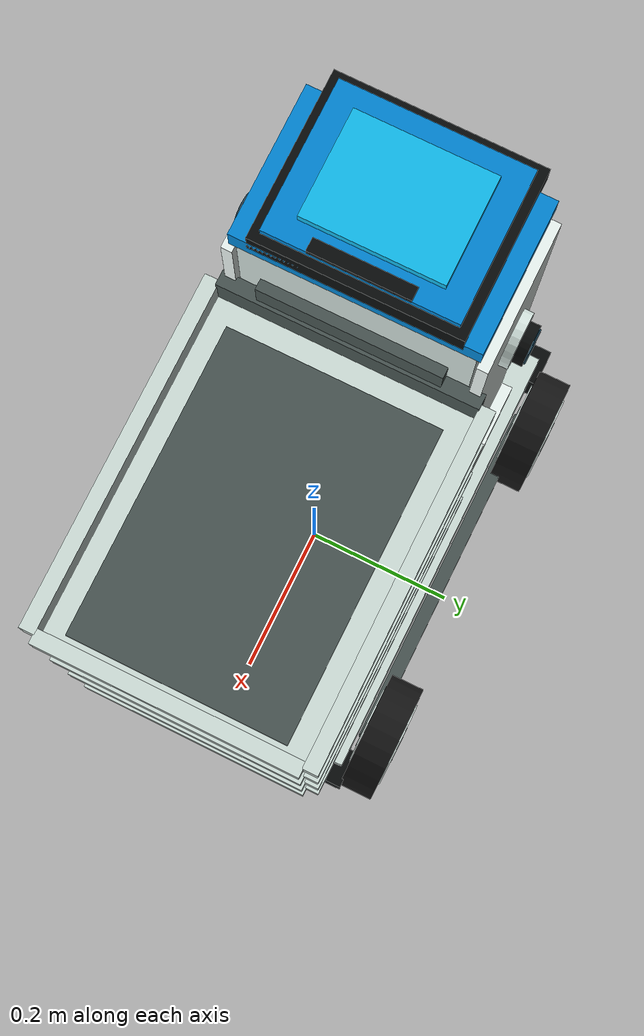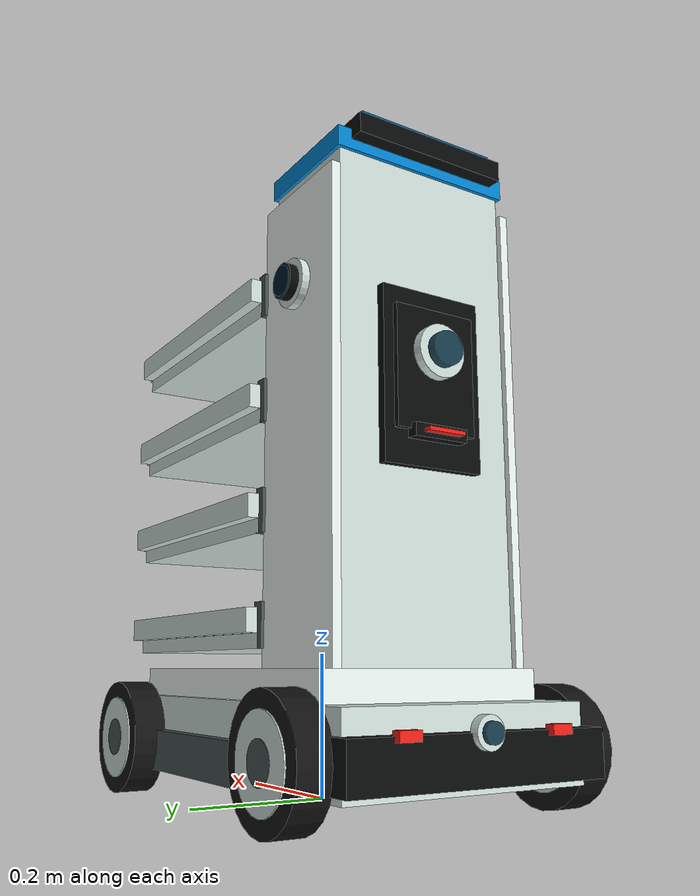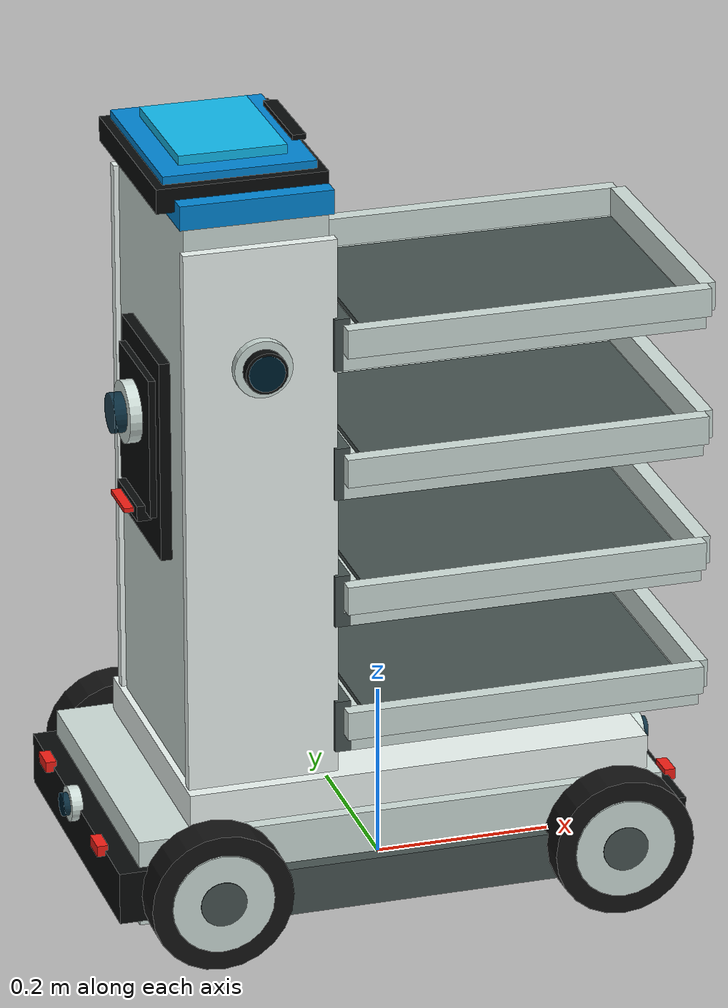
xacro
<?xml version="1.0"?>
<robot name="service_robot_cart" xmlns:xacro="http://www.ros.org/wiki/xacro">

  <!-- Include the geometric model -->
  <xacro:include filename="$(find service_robot_cart_description)/urdf/service_robot_cart_geometric.urdf.xacro"/>

  <!-- ros2_control hardware interface (inline, not included) -->
  <ros2_control name="mock_components" type="system">
    <hardware>
      <plugin>mock_components/System</plugin>
      <param name="front_left_wheel_joint">position</param>
      <param name="front_right_wheel_joint">position</param>
      <param name="rear_left_wheel_joint">position</param>
      <param name="rear_right_wheel_joint">position</param>
    </hardware>

    <joint name="front_left_wheel_joint">
      <command_interface name="position"/>
      <command_interface name="velocity"/>
      <state_interface name="position"/>
      <state_interface name="velocity"/>
    </joint>

    <joint name="front_right_wheel_joint">
      <command_interface name="position"/>
      <command_interface name="velocity"/>
      <state_interface name="position"/>
      <state_interface name="velocity"/>
    </joint>

    <joint name="rear_left_wheel_joint">
      <command_interface name="position"/>
      <command_interface name="velocity"/>
      <state_interface name="position"/>
      <state_interface name="velocity"/>
    </joint>

    <joint name="rear_right_wheel_joint">
      <command_interface name="position"/>
      <command_interface name="velocity"/>
      <state_interface name="position"/>
      <state_interface name="velocity"/>
    </joint>
  </ros2_control>

</robot>

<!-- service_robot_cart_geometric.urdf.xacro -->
<robot name="service_robot_cart_geometric" xmlns:xacro="http://www.ros.org/wiki/xacro">

  <!-- Simplified geometric URDF. Units: meters. -->

  <!-- Coordinate convention: +X forward/toward shelf side, +Y left, +Z up. -->

  <material name="silver">
    <color rgba="0.804 0.863 0.843 1"/>
  </material>
  <material name="dark_silver">
    <color rgba="0.275 0.322 0.314 1"/>
  </material>
  <material name="black">
    <color rgba="0.031 0.039 0.039 1"/>
  </material>
  <material name="rubber">
    <color rgba="0.071 0.071 0.071 1"/>
  </material>
  <material name="blue">
    <color rgba="0 0.518 0.824 1"/>
  </material>
  <material name="screen">
    <color rgba="0.063 0.725 0.922 0.902"/>
  </material>
  <material name="glass">
    <color rgba="0.02 0.176 0.255 0.863"/>
  </material>
  <material name="red">
    <color rgba="0.941 0.118 0.086 1"/>
  </material>
  <material name="white">
    <color rgba="0.922 0.961 0.949 1"/>
  </material>

  <link name="base_link">
    <inertial>
      <origin xyz="-0.02 0.0 0.1" rpy="0 0 0"/>
      <mass value="3.0"/>
      <inertia ixx="0.03625" ixy="0.0" ixz="0.0" iyy="0.095625" iyz="0.0" izz="0.120625"/>
    </inertial>
    <visual name="lower_chassis">
      <origin xyz="-0.025 0.0 0.09" rpy="0 0 0"/>
      <geometry>
        <box size="0.6 0.35 0.1"/>
      </geometry>
      <material name="silver"/>
    </visual>
    <visual name="upper_deck">
      <origin xyz="0.0 0.0 0.16" rpy="0 0 0"/>
      <geometry>
        <box size="0.525 0.32 0.04"/>
      </geometry>
      <material name="white"/>
    </visual>
    <visual name="front_black_bumper">
      <origin xyz="0.275 0.0 0.08" rpy="0 0 0"/>
      <geometry>
        <box size="0.05 0.37 0.06"/>
      </geometry>
      <material name="black"/>
    </visual>
    <visual name="rear_black_bumper">
      <origin xyz="-0.325 0.0 0.08" rpy="0 0 0"/>
      <geometry>
        <box size="0.05 0.37 0.06"/>
      </geometry>
      <material name="black"/>
    </visual>
    <visual name="left_side_skirt">
      <origin xyz="-0.015 0.186 0.065" rpy="0 0 0"/>
      <geometry>
        <box size="0.48 0.0175 0.055"/>
      </geometry>
      <material name="dark_silver"/>
    </visual>
    <visual name="right_side_skirt">
      <origin xyz="-0.015 -0.186 0.065" rpy="0 0 0"/>
      <geometry>
        <box size="0.48 0.0175 0.055"/>
      </geometry>
      <material name="dark_silver"/>
    </visual>
    <visual name="front_red_indicator_left">
      <origin xyz="0.3025 0.11 0.11" rpy="0 0 0"/>
      <geometry>
        <box size="0.0125 0.03 0.0125"/>
      </geometry>
      <material name="red"/>
    </visual>
    <visual name="front_red_indicator_right">
      <origin xyz="0.3025 -0.11 0.11" rpy="0 0 0"/>
      <geometry>
        <box size="0.0125 0.03 0.0125"/>
      </geometry>
      <material name="red"/>
    </visual>
    <visual name="rear_red_indicator_left">
      <origin xyz="-0.3525 0.11 0.11" rpy="0 0 0"/>
      <geometry>
        <box size="0.0125 0.03 0.0125"/>
      </geometry>
      <material name="red"/>
    </visual>
    <visual name="rear_red_indicator_right">
      <origin xyz="-0.3525 -0.11 0.11" rpy="0 0 0"/>
      <geometry>
        <box size="0.0125 0.03 0.0125"/>
      </geometry>
      <material name="red"/>
    </visual>
    <collision name="lower_chassis_collision">
      <origin xyz="-0.025 0.0 0.09" rpy="0 0 0"/>
      <geometry>
        <box size="0.6 0.35 0.1"/>
      </geometry>
    </collision>
    <collision name="upper_deck_collision">
      <origin xyz="0.0 0.0 0.16" rpy="0 0 0"/>
      <geometry>
        <box size="0.525 0.32 0.04"/>
      </geometry>
    </collision>
  </link>

  <link name="body_link">
    <inertial>
      <origin xyz="0.0 0.0 0.0" rpy="0 0 0"/>
      <mass value="2.5"/>
      <inertia ixx="0.11041666" ixy="0.0" ixz="0.0" iyy="0.10166666" iyz="0.0" izz="0.01941666"/>
    </inertial>
    <visual name="straight_main_body">
      <origin xyz="0.0 0.0 0.0" rpy="0 0 0"/>
      <geometry>
        <box size="0.16 0.26 0.68"/>
      </geometry>
      <material name="silver"/>
    </visual>
    <visual name="front_dark_service_panel">
      <origin xyz="0.0875 0.0 -0.01" rpy="0 0 0"/>
      <geometry>
        <box size="0.0125 0.21 0.54"/>
      </geometry>
      <material name="dark_silver"/>
    </visual>
    <visual name="rear_camera_recess_panel">
      <origin xyz="-0.0875 0.0 0.05" rpy="0 0 0"/>
      <geometry>
        <box size="0.0125 0.15 0.23"/>
      </geometry>
      <material name="black"/>
    </visual>
    <visual name="left_vertical_trim">
      <origin xyz="0.0 0.139 0.0" rpy="0 0 0"/>
      <geometry>
        <box size="0.17 0.0125 0.63"/>
      </geometry>
      <material name="white"/>
    </visual>
    <visual name="right_vertical_trim">
      <origin xyz="0.0 -0.139 0.0" rpy="0 0 0"/>
      <geometry>
        <box size="0.17 0.0125 0.63"/>
      </geometry>
      <material name="white"/>
    </visual>
    <visual name="top_blue_cap">
      <origin xyz="0.0 0.0 0.3535" rpy="0 0 0"/>
      <geometry>
        <box size="0.17 0.27 0.0275"/>
      </geometry>
      <material name="blue"/>
    </visual>
    <collision name="body_collision">
      <origin xyz="0.0 0.0 0.0" rpy="0 0 0"/>
      <geometry>
        <box size="0.16 0.26 0.68"/>
      </geometry>
    </collision>
  </link>

  <link name="tray_1_link">
    <inertial>
      <origin xyz="0.0 0.0 0.0" rpy="0 0 0"/>
      <mass value="0.25"/>
      <inertia ixx="0.00190834" ixy="0.0" ixz="0.0" iyy="0.00353541" iyz="0.0" izz="0.00537709"/>
    </inertial>
    <visual name="tray_1_deck">
      <origin xyz="0.0 0.0 0.0" rpy="0 0 0"/>
      <geometry>
        <box size="0.41 0.3 0.02"/>
      </geometry>
      <material name="silver"/>
    </visual>
    <visual name="tray_1_dark_inset">
      <origin xyz="0.01 0.0 0.0155" rpy="0 0 0"/>
      <geometry>
        <box size="0.36 0.25 0.006"/>
      </geometry>
      <material name="dark_silver"/>
    </visual>
    <visual name="tray_1_left_rail">
      <origin xyz="0.0 0.1575 0.0265" rpy="0 0 0"/>
      <geometry>
        <box size="0.41 0.0175 0.0325"/>
      </geometry>
      <material name="silver"/>
    </visual>
    <visual name="tray_1_right_rail">
      <origin xyz="0.0 -0.1575 0.0265" rpy="0 0 0"/>
      <geometry>
        <box size="0.41 0.0175 0.0325"/>
      </geometry>
      <material name="silver"/>
    </visual>
    <visual name="tray_1_front_rail">
      <origin xyz="0.206 0.0 0.0265" rpy="0 0 0"/>
      <geometry>
        <box size="0.0175 0.3 0.0325"/>
      </geometry>
      <material name="silver"/>
    </visual>
    <visual name="tray_1_rear_bracket">
      <origin xyz="-0.206 0.0 0.02" rpy="0 0 0"/>
      <geometry>
        <box size="0.0175 0.3 0.06"/>
      </geometry>
      <material name="dark_silver"/>
    </visual>
    <collision name="tray_1_collision">
      <origin xyz="0.0 0.0 0.0175" rpy="0 0 0"/>
      <geometry>
        <box size="0.42 0.32 0.0425"/>
      </geometry>
    </collision>
  </link>

  <link name="tray_1_surface_frame">
  </link>

  <link name="tray_2_link">
    <inertial>
      <origin xyz="0.0 0.0 0.0" rpy="0 0 0"/>
      <mass value="0.25"/>
      <inertia ixx="0.00190834" ixy="0.0" ixz="0.0" iyy="0.00353541" iyz="0.0" izz="0.00537709"/>
    </inertial>
    <visual name="tray_2_deck">
      <origin xyz="0.0 0.0 0.0" rpy="0 0 0"/>
      <geometry>
        <box size="0.41 0.3 0.02"/>
      </geometry>
      <material name="silver"/>
    </visual>
    <visual name="tray_2_dark_inset">
      <origin xyz="0.01 0.0 0.0155" rpy="0 0 0"/>
      <geometry>
        <box size="0.36 0.25 0.006"/>
      </geometry>
      <material name="dark_silver"/>
    </visual>
    <visual name="tray_2_left_rail">
      <origin xyz="0.0 0.1575 0.0265" rpy="0 0 0"/>
      <geometry>
        <box size="0.41 0.0175 0.0325"/>
      </geometry>
      <material name="silver"/>
    </visual>
    <visual name="tray_2_right_rail">
      <origin xyz="0.0 -0.1575 0.0265" rpy="0 0 0"/>
      <geometry>
        <box size="0.41 0.0175 0.0325"/>
      </geometry>
      <material name="silver"/>
    </visual>
    <visual name="tray_2_front_rail">
      <origin xyz="0.206 0.0 0.0265" rpy="0 0 0"/>
      <geometry>
        <box size="0.0175 0.3 0.0325"/>
      </geometry>
      <material name="silver"/>
    </visual>
    <visual name="tray_2_rear_bracket">
      <origin xyz="-0.206 0.0 0.02" rpy="0 0 0"/>
      <geometry>
        <box size="0.0175 0.3 0.06"/>
      </geometry>
      <material name="dark_silver"/>
    </visual>
    <collision name="tray_2_collision">
      <origin xyz="0.0 0.0 0.0175" rpy="0 0 0"/>
      <geometry>
        <box size="0.42 0.32 0.0425"/>
      </geometry>
    </collision>
  </link>

  <link name="tray_2_surface_frame">
  </link>

  <link name="tray_3_link">
    <inertial>
      <origin xyz="0.0 0.0 0.0" rpy="0 0 0"/>
      <mass value="0.25"/>
      <inertia ixx="0.00190834" ixy="0.0" ixz="0.0" iyy="0.00353541" iyz="0.0" izz="0.00537709"/>
    </inertial>
    <visual name="tray_3_deck">
      <origin xyz="0.0 0.0 0.0" rpy="0 0 0"/>
      <geometry>
        <box size="0.41 0.3 0.02"/>
      </geometry>
      <material name="silver"/>
    </visual>
    <visual name="tray_3_dark_inset">
      <origin xyz="0.01 0.0 0.0155" rpy="0 0 0"/>
      <geometry>
        <box size="0.36 0.25 0.006"/>
      </geometry>
      <material name="dark_silver"/>
    </visual>
    <visual name="tray_3_left_rail">
      <origin xyz="0.0 0.1575 0.0265" rpy="0 0 0"/>
      <geometry>
        <box size="0.41 0.0175 0.0325"/>
      </geometry>
      <material name="silver"/>
    </visual>
    <visual name="tray_3_right_rail">
      <origin xyz="0.0 -0.1575 0.0265" rpy="0 0 0"/>
      <geometry>
        <box size="0.41 0.0175 0.0325"/>
      </geometry>
      <material name="silver"/>
    </visual>
    <visual name="tray_3_front_rail">
      <origin xyz="0.206 0.0 0.0265" rpy="0 0 0"/>
      <geometry>
        <box size="0.0175 0.3 0.0325"/>
      </geometry>
      <material name="silver"/>
    </visual>
    <visual name="tray_3_rear_bracket">
      <origin xyz="-0.206 0.0 0.02" rpy="0 0 0"/>
      <geometry>
        <box size="0.0175 0.3 0.06"/>
      </geometry>
      <material name="dark_silver"/>
    </visual>
    <collision name="tray_3_collision">
      <origin xyz="0.0 0.0 0.0175" rpy="0 0 0"/>
      <geometry>
        <box size="0.42 0.32 0.0425"/>
      </geometry>
    </collision>
  </link>

  <link name="tray_3_surface_frame">
  </link>

  <link name="tray_4_link">
    <inertial>
      <origin xyz="0.0 0.0 0.0" rpy="0 0 0"/>
      <mass value="0.25"/>
      <inertia ixx="0.00190834" ixy="0.0" ixz="0.0" iyy="0.00353541" iyz="0.0" izz="0.00537709"/>
    </inertial>
    <visual name="tray_4_deck">
      <origin xyz="0.0 0.0 0.0" rpy="0 0 0"/>
      <geometry>
        <box size="0.41 0.3 0.02"/>
      </geometry>
      <material name="silver"/>
    </visual>
    <visual name="tray_4_dark_inset">
      <origin xyz="0.01 0.0 0.0155" rpy="0 0 0"/>
      <geometry>
        <box size="0.36 0.25 0.006"/>
      </geometry>
      <material name="dark_silver"/>
    </visual>
    <visual name="tray_4_left_rail">
      <origin xyz="0.0 0.1575 0.0265" rpy="0 0 0"/>
      <geometry>
        <box size="0.41 0.0175 0.0325"/>
      </geometry>
      <material name="silver"/>
    </visual>
    <visual name="tray_4_right_rail">
      <origin xyz="0.0 -0.1575 0.0265" rpy="0 0 0"/>
      <geometry>
        <box size="0.41 0.0175 0.0325"/>
      </geometry>
      <material name="silver"/>
    </visual>
    <visual name="tray_4_front_rail">
      <origin xyz="0.206 0.0 0.0265" rpy="0 0 0"/>
      <geometry>
        <box size="0.0175 0.3 0.0325"/>
      </geometry>
      <material name="silver"/>
    </visual>
    <visual name="tray_4_rear_bracket">
      <origin xyz="-0.206 0.0 0.02" rpy="0 0 0"/>
      <geometry>
        <box size="0.0175 0.3 0.06"/>
      </geometry>
      <material name="dark_silver"/>
    </visual>
    <collision name="tray_4_collision">
      <origin xyz="0.0 0.0 0.0175" rpy="0 0 0"/>
      <geometry>
        <box size="0.42 0.32 0.0425"/>
      </geometry>
    </collision>
  </link>

  <link name="tray_4_surface_frame">
  </link>

  <link name="front_left_wheel_link">
    <inertial>
      <origin xyz="0.0 0.0 0.0" rpy="0 0 0"/>
      <mass value="0.25"/>
      <inertia ixx="0.00044219" ixy="0.0" ixz="0.0" iyy="0.0008" iyz="0.0" izz="0.00044219"/>
    </inertial>
    <visual name="front_left_wheel_link_rubber_tire">
      <origin xyz="0.0 0.0 0.0" rpy="-1.570796 0 0"/>
      <geometry>
        <cylinder radius="0.08" length="0.045"/>
      </geometry>
      <material name="rubber"/>
    </visual>
    <visual name="front_left_wheel_link_silver_hub">
      <origin xyz="0.0 0.0 0.0" rpy="-1.570796 0 0"/>
      <geometry>
        <cylinder radius="0.0575" length="0.049"/>
      </geometry>
      <material name="silver"/>
    </visual>
    <visual name="front_left_wheel_link_dark_center_cap">
      <origin xyz="0.0 0.0 0.0" rpy="-1.570796 0 0"/>
      <geometry>
        <cylinder radius="0.026" length="0.051"/>
      </geometry>
      <material name="dark_silver"/>
    </visual>
    <collision name="wheel_collision">
      <origin xyz="0.0 0.0 0.0" rpy="-1.570796 0 0"/>
      <geometry>
        <cylinder radius="0.08" length="0.045"/>
      </geometry>
    </collision>
  </link>

  <link name="front_right_wheel_link">
    <inertial>
      <origin xyz="0.0 0.0 0.0" rpy="0 0 0"/>
      <mass value="0.25"/>
      <inertia ixx="0.00044219" ixy="0.0" ixz="0.0" iyy="0.0008" iyz="0.0" izz="0.00044219"/>
    </inertial>
    <visual name="front_right_wheel_link_rubber_tire">
      <origin xyz="0.0 0.0 0.0" rpy="-1.570796 0 0"/>
      <geometry>
        <cylinder radius="0.08" length="0.045"/>
      </geometry>
      <material name="rubber"/>
    </visual>
    <visual name="front_right_wheel_link_silver_hub">
      <origin xyz="0.0 0.0 0.0" rpy="-1.570796 0 0"/>
      <geometry>
        <cylinder radius="0.0575" length="0.049"/>
      </geometry>
      <material name="silver"/>
    </visual>
    <visual name="front_right_wheel_link_dark_center_cap">
      <origin xyz="0.0 0.0 0.0" rpy="-1.570796 0 0"/>
      <geometry>
        <cylinder radius="0.026" length="0.051"/>
      </geometry>
      <material name="dark_silver"/>
    </visual>
    <collision name="wheel_collision">
      <origin xyz="0.0 0.0 0.0" rpy="-1.570796 0 0"/>
      <geometry>
        <cylinder radius="0.08" length="0.045"/>
      </geometry>
    </collision>
  </link>

  <link name="rear_left_wheel_link">
    <inertial>
      <origin xyz="0.0 0.0 0.0" rpy="0 0 0"/>
      <mass value="0.25"/>
      <inertia ixx="0.00044219" ixy="0.0" ixz="0.0" iyy="0.0008" iyz="0.0" izz="0.00044219"/>
    </inertial>
    <visual name="rear_left_wheel_link_rubber_tire">
      <origin xyz="0.0 0.0 0.0" rpy="-1.570796 0 0"/>
      <geometry>
        <cylinder radius="0.08" length="0.045"/>
      </geometry>
      <material name="rubber"/>
    </visual>
    <visual name="rear_left_wheel_link_silver_hub">
      <origin xyz="0.0 0.0 0.0" rpy="-1.570796 0 0"/>
      <geometry>
        <cylinder radius="0.0575" length="0.049"/>
      </geometry>
      <material name="silver"/>
    </visual>
    <visual name="rear_left_wheel_link_dark_center_cap">
      <origin xyz="0.0 0.0 0.0" rpy="-1.570796 0 0"/>
      <geometry>
        <cylinder radius="0.026" length="0.051"/>
      </geometry>
      <material name="dark_silver"/>
    </visual>
    <collision name="wheel_collision">
      <origin xyz="0.0 0.0 0.0" rpy="-1.570796 0 0"/>
      <geometry>
        <cylinder radius="0.08" length="0.045"/>
      </geometry>
    </collision>
  </link>

  <link name="rear_right_wheel_link">
    <inertial>
      <origin xyz="0.0 0.0 0.0" rpy="0 0 0"/>
      <mass value="0.25"/>
      <inertia ixx="0.00044219" ixy="0.0" ixz="0.0" iyy="0.0008" iyz="0.0" izz="0.00044219"/>
    </inertial>
    <visual name="rear_right_wheel_link_rubber_tire">
      <origin xyz="0.0 0.0 0.0" rpy="-1.570796 0 0"/>
      <geometry>
        <cylinder radius="0.08" length="0.045"/>
      </geometry>
      <material name="rubber"/>
    </visual>
    <visual name="rear_right_wheel_link_silver_hub">
      <origin xyz="0.0 0.0 0.0" rpy="-1.570796 0 0"/>
      <geometry>
        <cylinder radius="0.0575" length="0.049"/>
      </geometry>
      <material name="silver"/>
    </visual>
    <visual name="rear_right_wheel_link_dark_center_cap">
      <origin xyz="0.0 0.0 0.0" rpy="-1.570796 0 0"/>
      <geometry>
        <cylinder radius="0.026" length="0.051"/>
      </geometry>
      <material name="dark_silver"/>
    </visual>
    <collision name="wheel_collision">
      <origin xyz="0.0 0.0 0.0" rpy="-1.570796 0 0"/>
      <geometry>
        <cylinder radius="0.08" length="0.045"/>
      </geometry>
    </collision>
  </link>

  <link name="rear_camera_link">
    <inertial>
      <origin xyz="0.0 0.0 0.0" rpy="0 0 0"/>
      <mass value="0.0437"/>
      <inertia ixx="0.00017975" ixy="0.0" ixz="0.0" iyy="0.00012259" iyz="0.0" izz="6.609e-05"/>
    </inertial>
    <visual name="rear_camera_black_panel">
      <origin xyz="0.0 0.0 0.0" rpy="0 0 0"/>
      <geometry>
        <box size="0.0175 0.12 0.16"/>
      </geometry>
      <material name="black"/>
    </visual>
    <visual name="rear_camera_silver_ring">
      <origin xyz="0.0125 0.0 0.0225" rpy="0 1.570796 0"/>
      <geometry>
        <cylinder radius="0.035" length="0.02"/>
      </geometry>
      <material name="silver"/>
    </visual>
    <visual name="rear_camera_glass_lens">
      <origin xyz="0.025 0.0 0.0225" rpy="0 1.570796 0"/>
      <geometry>
        <cylinder radius="0.0225" length="0.022"/>
      </geometry>
      <material name="glass"/>
    </visual>
    <visual name="rear_small_scanner_slot">
      <origin xyz="0.01 0.0 -0.0825" rpy="0 0 0"/>
      <geometry>
        <box size="0.016 0.08 0.0175"/>
      </geometry>
      <material name="black"/>
    </visual>
    <visual name="rear_small_red_line">
      <origin xyz="0.0205 0.0 -0.0825" rpy="0 0 0"/>
      <geometry>
        <box size="0.017 0.055 0.005"/>
      </geometry>
      <material name="red"/>
    </visual>
    <collision name="rear_camera_collision">
      <origin xyz="0.0 0.0 0.0" rpy="0 0 0"/>
      <geometry>
        <box size="0.035 0.13 0.18"/>
      </geometry>
    </collision>
  </link>

  <link name="rear_camera_optical_frame">
  </link>

  <link name="left_side_camera_link">
    <inertial>
      <origin xyz="0.0 0.0 0.0" rpy="0 0 0"/>
      <mass value="0.0312"/>
      <inertia ixx="1.65e-05" ixy="0.0" ixz="0.0" iyy="1.022e-05" iyz="0.0" izz="1.022e-05"/>
    </inertial>
    <visual name="left_side_camera_housing">
      <origin xyz="0.0 0.0 0.0" rpy="0 1.570796 0"/>
      <geometry>
        <cylinder radius="0.0325" length="0.0275"/>
      </geometry>
      <material name="silver"/>
    </visual>
    <visual name="left_side_camera_lens">
      <origin xyz="0.013 0.0 0.0" rpy="0 1.570796 0"/>
      <geometry>
        <cylinder radius="0.02" length="0.03"/>
      </geometry>
      <material name="glass"/>
    </visual>
    <visual name="left_side_camera_black_ring">
      <origin xyz="0.01 0.0 0.0" rpy="0 1.570796 0"/>
      <geometry>
        <cylinder radius="0.0235" length="0.032"/>
      </geometry>
      <material name="black"/>
    </visual>
    <collision name="left_side_camera_link_collision">
      <origin xyz="0.0 0.0 0.0" rpy="0 1.570796 0"/>
      <geometry>
        <cylinder radius="0.035" length="0.035"/>
      </geometry>
    </collision>
  </link>

  <link name="left_side_camera_optical_frame">
  </link>

  <link name="right_side_camera_link">
    <inertial>
      <origin xyz="0.0 0.0 0.0" rpy="0 0 0"/>
      <mass value="0.0312"/>
      <inertia ixx="1.65e-05" ixy="0.0" ixz="0.0" iyy="1.022e-05" iyz="0.0" izz="1.022e-05"/>
    </inertial>
    <visual name="right_side_camera_housing">
      <origin xyz="0.0 0.0 0.0" rpy="0 1.570796 0"/>
      <geometry>
        <cylinder radius="0.0325" length="0.0275"/>
      </geometry>
      <material name="silver"/>
    </visual>
    <visual name="right_side_camera_lens">
      <origin xyz="0.013 0.0 0.0" rpy="0 1.570796 0"/>
      <geometry>
        <cylinder radius="0.02" length="0.03"/>
      </geometry>
      <material name="glass"/>
    </visual>
    <visual name="right_side_camera_black_ring">
      <origin xyz="0.01 0.0 0.0" rpy="0 1.570796 0"/>
      <geometry>
        <cylinder radius="0.0235" length="0.032"/>
      </geometry>
      <material name="black"/>
    </visual>
    <collision name="right_side_camera_link_collision">
      <origin xyz="0.0 0.0 0.0" rpy="0 1.570796 0"/>
      <geometry>
        <cylinder radius="0.035" length="0.035"/>
      </geometry>
    </collision>
  </link>

  <link name="right_side_camera_optical_frame">
  </link>

  <link name="top_display_link">
    <inertial>
      <origin xyz="0.0 0.0 0.0" rpy="0 0 0"/>
      <mass value="0.0563"/>
      <inertia ixx="0.0002775" ixy="0.0" ixz="0.0" iyy="0.000195" iyz="0.0" izz="0.0004575"/>
    </inertial>
    <visual name="top_display_black_housing">
      <origin xyz="0.0 0.0 0.0" rpy="0 0 0"/>
      <geometry>
        <box size="0.19 0.23 0.0275"/>
      </geometry>
      <material name="black"/>
    </visual>
    <visual name="top_display_blue_bezel">
      <origin xyz="0.0 0.0 0.019" rpy="0 0 0"/>
      <geometry>
        <box size="0.17 0.21 0.009"/>
      </geometry>
      <material name="blue"/>
    </visual>
    <visual name="top_display_screen">
      <origin xyz="0.0 0.0 0.029" rpy="0 0 0"/>
      <geometry>
        <box size="0.12 0.155 0.0105"/>
      </geometry>
      <material name="screen"/>
    </visual>
    <visual name="top_display_slot">
      <origin xyz="0.08 0.0 0.032" rpy="0 0 0"/>
      <geometry>
        <box size="0.015 0.11 0.006"/>
      </geometry>
      <material name="black"/>
    </visual>
    <collision name="top_display_collision">
      <origin xyz="0.0 0.0 0.0" rpy="0 0 0"/>
      <geometry>
        <box size="0.2 0.24 0.04"/>
      </geometry>
    </collision>
  </link>

  <link name="front_sensor_link">
    <inertial>
      <origin xyz="0.0 0.0 0.0" rpy="0 0 0"/>
      <mass value="0.0125"/>
      <inertia ixx="2.5e-06" ixy="0.0" ixz="0.0" iyy="1.41e-06" iyz="0.0" izz="1.41e-06"/>
    </inertial>
    <visual name="front_sensor_link_silver_ring">
      <origin xyz="0.0 0.0 0.0" rpy="0 1.570796 0"/>
      <geometry>
        <cylinder radius="0.02" length="0.0125"/>
      </geometry>
      <material name="silver"/>
    </visual>
    <visual name="front_sensor_link_glass">
      <origin xyz="0.006 0.0 0.0" rpy="0 1.570796 0"/>
      <geometry>
        <cylinder radius="0.013" length="0.015"/>
      </geometry>
      <material name="glass"/>
    </visual>
    <collision name="front_sensor_link_collision">
      <origin xyz="0.0 0.0 0.0" rpy="0 1.570796 0"/>
      <geometry>
        <cylinder radius="0.0225" length="0.0175"/>
      </geometry>
    </collision>
  </link>

  <link name="rear_sensor_link">
    <inertial>
      <origin xyz="0.0 0.0 0.0" rpy="0 0 0"/>
      <mass value="0.0125"/>
      <inertia ixx="2.5e-06" ixy="0.0" ixz="0.0" iyy="1.41e-06" iyz="0.0" izz="1.41e-06"/>
    </inertial>
    <visual name="rear_sensor_link_silver_ring">
      <origin xyz="0.0 0.0 0.0" rpy="0 1.570796 0"/>
      <geometry>
        <cylinder radius="0.02" length="0.0125"/>
      </geometry>
      <material name="silver"/>
    </visual>
    <visual name="rear_sensor_link_glass">
      <origin xyz="0.006 0.0 0.0" rpy="0 1.570796 0"/>
      <geometry>
        <cylinder radius="0.013" length="0.015"/>
      </geometry>
      <material name="glass"/>
    </visual>
    <collision name="rear_sensor_link_collision">
      <origin xyz="0.0 0.0 0.0" rpy="0 1.570796 0"/>
      <geometry>
        <cylinder radius="0.0225" length="0.0175"/>
      </geometry>
    </collision>
  </link>

  <joint name="base_to_body_joint" type="fixed">
    <parent link="base_link"/>
    <child link="body_link"/>
    <origin xyz="-0.175 0.0 0.49" rpy="0 0 0"/>
  </joint>

  <joint name="tray_1_joint" type="fixed">
    <parent link="body_link"/>
    <child link="tray_1_link"/>
    <origin xyz="0.295 0.0 -0.275" rpy="0 0 0"/>
  </joint>

  <joint name="tray_1_surface_frame_joint" type="fixed">
    <parent link="tray_1_link"/>
    <child link="tray_1_surface_frame"/>
    <origin xyz="0.0 0.0 0.04" rpy="0 0 0"/>
  </joint>

  <joint name="tray_2_joint" type="fixed">
    <parent link="body_link"/>
    <child link="tray_2_link"/>
    <origin xyz="0.295 0.0 -0.125" rpy="0 0 0"/>
  </joint>

  <joint name="tray_2_surface_frame_joint" type="fixed">
    <parent link="tray_2_link"/>
    <child link="tray_2_surface_frame"/>
    <origin xyz="0.0 0.0 0.04" rpy="0 0 0"/>
  </joint>

  <joint name="tray_3_joint" type="fixed">
    <parent link="body_link"/>
    <child link="tray_3_link"/>
    <origin xyz="0.295 0.0 0.025" rpy="0 0 0"/>
  </joint>

  <joint name="tray_3_surface_frame_joint" type="fixed">
    <parent link="tray_3_link"/>
    <child link="tray_3_surface_frame"/>
    <origin xyz="0.0 0.0 0.04" rpy="0 0 0"/>
  </joint>

  <joint name="tray_4_joint" type="fixed">
    <parent link="body_link"/>
    <child link="tray_4_link"/>
    <origin xyz="0.295 0.0 0.175" rpy="0 0 0"/>
  </joint>

  <joint name="tray_4_surface_frame_joint" type="fixed">
    <parent link="tray_4_link"/>
    <child link="tray_4_surface_frame"/>
    <origin xyz="0.0 0.0 0.04" rpy="0 0 0"/>
  </joint>

  <joint name="front_left_wheel_joint" type="continuous">
    <parent link="base_link"/>
    <child link="front_left_wheel_link"/>
    <origin xyz="0.215 0.205 0.08" rpy="0 0 0"/>
    <axis xyz="0 1 0"/>
    <dynamics damping="0.02" friction="0.01"/>
  </joint>

  <joint name="front_right_wheel_joint" type="continuous">
    <parent link="base_link"/>
    <child link="front_right_wheel_link"/>
    <origin xyz="0.215 -0.205 0.08" rpy="0 0 0"/>
    <axis xyz="0 1 0"/>
    <dynamics damping="0.02" friction="0.01"/>
  </joint>

  <joint name="rear_left_wheel_joint" type="continuous">
    <parent link="base_link"/>
    <child link="rear_left_wheel_link"/>
    <origin xyz="-0.245 0.205 0.08" rpy="0 0 0"/>
    <axis xyz="0 1 0"/>
    <dynamics damping="0.02" friction="0.01"/>
  </joint>

  <joint name="rear_right_wheel_joint" type="continuous">
    <parent link="base_link"/>
    <child link="rear_right_wheel_link"/>
    <origin xyz="-0.245 -0.205 0.08" rpy="0 0 0"/>
    <axis xyz="0 1 0"/>
    <dynamics damping="0.02" friction="0.01"/>
  </joint>

  <joint name="body_to_rear_camera_joint" type="fixed">
    <parent link="body_link"/>
    <child link="rear_camera_link"/>
    <origin xyz="-0.0925 0.0 0.06" rpy="0 0 3.141593"/>
  </joint>

  <joint name="rear_camera_optical_joint" type="fixed">
    <parent link="rear_camera_link"/>
    <child link="rear_camera_optical_frame"/>
    <origin xyz="0.0 0.0 0.0" rpy="-1.570796 0 -1.570796"/>
  </joint>

  <joint name="body_to_left_side_camera_link_joint" type="fixed">
    <parent link="body_link"/>
    <child link="left_side_camera_link"/>
    <origin xyz="0.0 0.1425 0.18" rpy="0 0 1.570796"/>
  </joint>

  <joint name="left_side_camera_optical_frame_joint" type="fixed">
    <parent link="left_side_camera_link"/>
    <child link="left_side_camera_optical_frame"/>
    <origin xyz="0.0 0.0 0.0" rpy="-1.570796 0 -1.570796"/>
  </joint>

  <joint name="body_to_right_side_camera_link_joint" type="fixed">
    <parent link="body_link"/>
    <child link="right_side_camera_link"/>
    <origin xyz="0.0 -0.1425 0.18" rpy="0 0 -1.570796"/>
  </joint>

  <joint name="right_side_camera_optical_frame_joint" type="fixed">
    <parent link="right_side_camera_link"/>
    <child link="right_side_camera_optical_frame"/>
    <origin xyz="0.0 0.0 0.0" rpy="-1.570796 0 -1.570796"/>
  </joint>

  <joint name="body_to_top_display_joint" type="fixed">
    <parent link="body_link"/>
    <child link="top_display_link"/>
    <origin xyz="-0.01 0.0 0.3675" rpy="0 0 0"/>
  </joint>

  <joint name="front_sensor_link_joint" type="fixed">
    <parent link="base_link"/>
    <child link="front_sensor_link"/>
    <origin xyz="0.3025 0.0 0.11" rpy="0 0 0"/>
  </joint>

  <joint name="rear_sensor_link_joint" type="fixed">
    <parent link="base_link"/>
    <child link="rear_sensor_link"/>
    <origin xyz="-0.3525 0.0 0.11" rpy="0 0 3.141593"/>
  </joint>

</robot>
